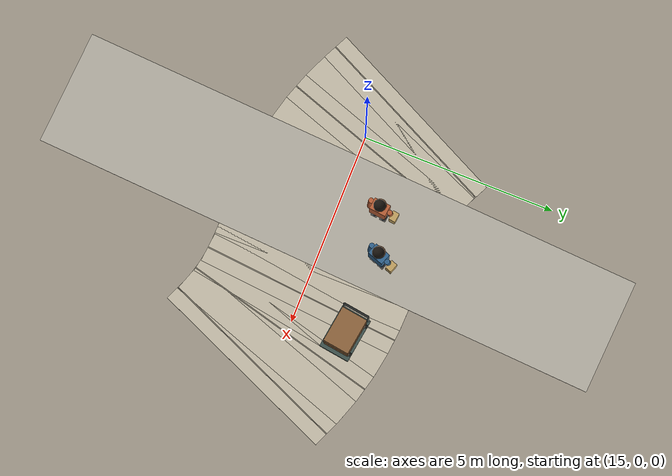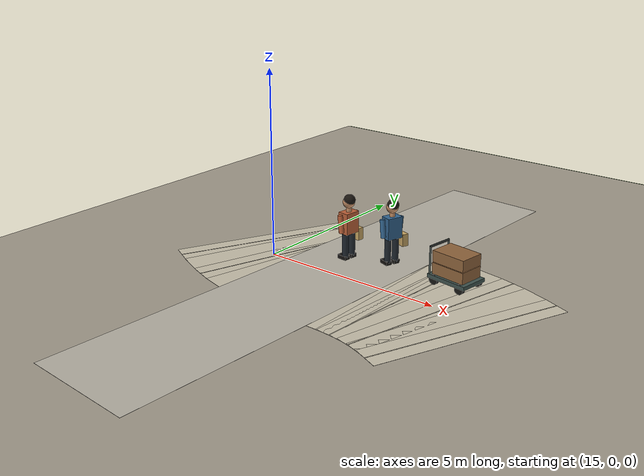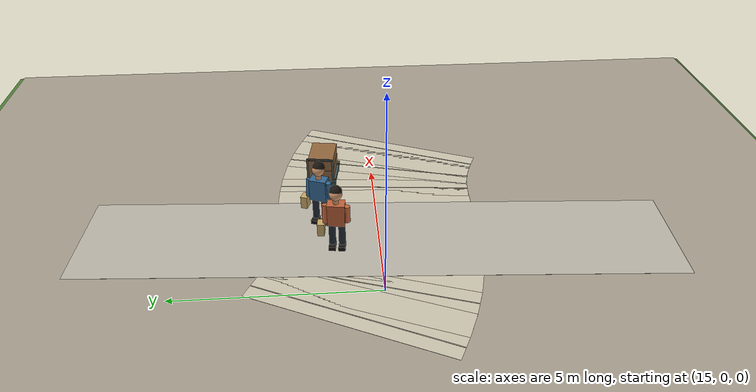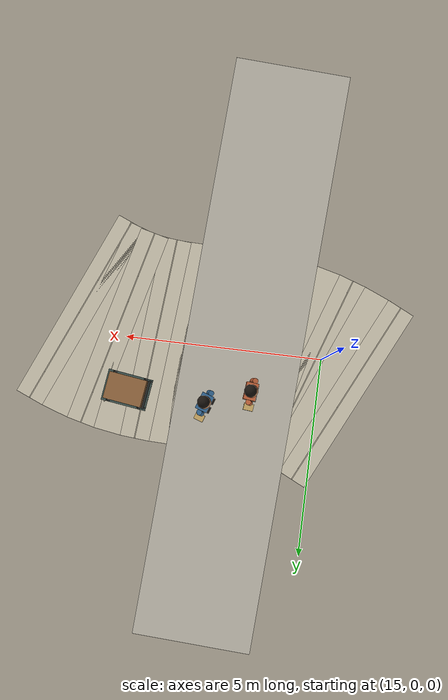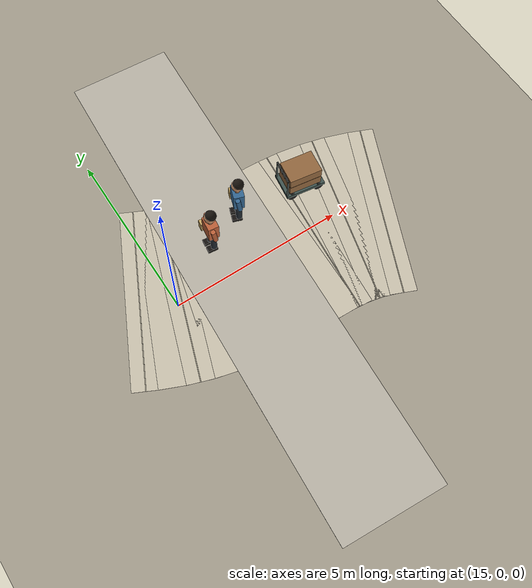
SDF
<sdf version="1.10">
 <world name="swan_town">
  <model name="ground_plane">
   <pose>-14 30 -0.025 0 0 0</pose>
   <static>true</static>
   <link name="link">
    <collision name="collision">
     <geometry><plane><normal>0 0 1</normal><size>100 100</size></plane></geometry>
    </collision>
    <visual name="visual">
     <geometry><plane><normal>0 0 1</normal><size>100 100</size></plane></geometry>
     <material><ambient>0.3 0.5 0.2 1</ambient><diffuse>0.3 0.5 0.2 1</diffuse></material>
    </visual>
   </link>
  </model>
  <model name="ground">
   <static>true</static>
   <pose>15 0 -0.1 0 0 0</pose>
   <link name="body">
    <collision name="box_collision"><geometry><box><size>46 24 0.2</size></box></geometry></collision>
    <visual name="box_visual">
     <geometry><box><size>46 24 0.2</size></box></geometry>
     <material><ambient>0.64 0.61 0.55 1</ambient><diffuse>0.64 0.61 0.55 1</diffuse></material>
    </visual>
   </link>
  </model>
  <model name="market_paving_32">
   <static>true</static>
   <pose>14.25 0.77782 0.002 0 0 -0.45458</pose>
   <link name="body">
    <visual name="box_visual">
     <geometry><box><size>0.75 5.2 0.004</size></box></geometry>
     <material><ambient>0.79 0.76 0.68 1</ambient><diffuse>0.79 0.76 0.68 1</diffuse></material>
    </visual>
   </link>
  </model>
  <model name="paving_joint_32">
   <static>true</static>
   <pose>14.25 0.77782 0.0045 0 0 -0.45458</pose>
   <link name="body">
    <visual name="box_visual">
     <geometry><box><size>0.025 5.2 0.001</size></box></geometry>
     <material><ambient>0.67 0.64 0.57 1</ambient><diffuse>0.67 0.64 0.57 1</diffuse></material>
    </visual>
   </link>
  </model>
  <model name="market_paving_33">
   <static>true</static>
   <pose>14.75 0.54833 0.002 0 0 -0.40225</pose>
   <link name="body">
    <visual name="box_visual">
     <geometry><box><size>0.75 5.2 0.004</size></box></geometry>
     <material><ambient>0.79 0.76 0.68 1</ambient><diffuse>0.79 0.76 0.68 1</diffuse></material>
    </visual>
   </link>
  </model>
  <model name="market_paving_34">
   <static>true</static>
   <pose>15.25 0.35543 0.002 0 0 -0.33122</pose>
   <link name="body">
    <visual name="box_visual">
     <geometry><box><size>0.75 5.2 0.004</size></box></geometry>
     <material><ambient>0.79 0.76 0.68 1</ambient><diffuse>0.79 0.76 0.68 1</diffuse></material>
    </visual>
   </link>
  </model>
  <model name="paving_joint_34">
   <static>true</static>
   <pose>15.25 0.35543 0.0045 0 0 -0.33122</pose>
   <link name="body">
    <visual name="box_visual">
     <geometry><box><size>0.025 5.2 0.001</size></box></geometry>
     <material><ambient>0.67 0.64 0.57 1</ambient><diffuse>0.67 0.64 0.57 1</diffuse></material>
    </visual>
   </link>
  </model>
  <model name="market_paving_35">
   <static>true</static>
   <pose>15.75 0.20586 0.002 0 0 -0.2486</pose>
   <link name="body">
    <visual name="box_visual">
     <geometry><box><size>0.75 5.2 0.004</size></box></geometry>
     <material><ambient>0.79 0.76 0.68 1</ambient><diffuse>0.79 0.76 0.68 1</diffuse></material>
    </visual>
   </link>
  </model>
  <model name="market_paving_36">
   <static>true</static>
   <pose>16.25 0.10125 0.002 0 0 -0.16424</pose>
   <link name="body">
    <visual name="box_visual">
     <geometry><box><size>0.75 5.2 0.004</size></box></geometry>
     <material><ambient>0.79 0.76 0.68 1</ambient><diffuse>0.79 0.76 0.68 1</diffuse></material>
    </visual>
   </link>
  </model>
  <model name="paving_joint_36">
   <static>true</static>
   <pose>16.25 0.10125 0.0045 0 0 -0.16424</pose>
   <link name="body">
    <visual name="box_visual">
     <geometry><box><size>0.025 5.2 0.001</size></box></geometry>
     <material><ambient>0.67 0.64 0.57 1</ambient><diffuse>0.67 0.64 0.57 1</diffuse></material>
    </visual>
   </link>
  </model>
  <model name="market_paving_37">
   <static>true</static>
   <pose>16.75 0.038143 0.002 0 0 -0.089204</pose>
   <link name="body">
    <visual name="box_visual">
     <geometry><box><size>0.75 5.2 0.004</size></box></geometry>
     <material><ambient>0.79 0.76 0.68 1</ambient><diffuse>0.79 0.76 0.68 1</diffuse></material>
    </visual>
   </link>
  </model>
  <model name="market_paving_38">
   <static>true</static>
   <pose>17.25 0.0084221 0.002 0 0 -0.033398</pose>
   <link name="body">
    <visual name="box_visual">
     <geometry><box><size>0.75 5.2 0.004</size></box></geometry>
     <material><ambient>0.79 0.76 0.68 1</ambient><diffuse>0.79 0.76 0.68 1</diffuse></material>
    </visual>
   </link>
  </model>
  <model name="paving_joint_38">
   <static>true</static>
   <pose>17.25 0.0084221 0.0045 0 0 -0.033398</pose>
   <link name="body">
    <visual name="box_visual">
     <geometry><box><size>0.025 5.2 0.001</size></box></geometry>
     <material><ambient>0.67 0.64 0.57 1</ambient><diffuse>0.67 0.64 0.57 1</diffuse></material>
    </visual>
   </link>
  </model>
  <model name="market_paving_39">
   <static>true</static>
   <pose>17.75 0.00031537 0.002 0 0 -0.003781</pose>
   <link name="body">
    <visual name="box_visual">
     <geometry><box><size>0.75 5.2 0.004</size></box></geometry>
     <material><ambient>0.79 0.76 0.68 1</ambient><diffuse>0.79 0.76 0.68 1</diffuse></material>
    </visual>
   </link>
  </model>
  <model name="market_paving_40">
   <static>true</static>
   <pose>18.25 -0.00031537 0.002 0 0 -0.003781</pose>
   <link name="body">
    <visual name="box_visual">
     <geometry><box><size>0.75 5.2 0.004</size></box></geometry>
     <material><ambient>0.79 0.76 0.68 1</ambient><diffuse>0.79 0.76 0.68 1</diffuse></material>
    </visual>
   </link>
  </model>
  <model name="paving_joint_40">
   <static>true</static>
   <pose>18.25 -0.00031537 0.0045 0 0 -0.003781</pose>
   <link name="body">
    <visual name="box_visual">
     <geometry><box><size>0.025 5.2 0.001</size></box></geometry>
     <material><ambient>0.67 0.64 0.57 1</ambient><diffuse>0.67 0.64 0.57 1</diffuse></material>
    </visual>
   </link>
  </model>
  <model name="market_paving_41">
   <static>true</static>
   <pose>18.75 -0.0084221 0.002 0 0 -0.033398</pose>
   <link name="body">
    <visual name="box_visual">
     <geometry><box><size>0.75 5.2 0.004</size></box></geometry>
     <material><ambient>0.79 0.76 0.68 1</ambient><diffuse>0.79 0.76 0.68 1</diffuse></material>
    </visual>
   </link>
  </model>
  <model name="market_paving_42">
   <static>true</static>
   <pose>19.25 -0.038143 0.002 0 0 -0.089204</pose>
   <link name="body">
    <visual name="box_visual">
     <geometry><box><size>0.75 5.2 0.004</size></box></geometry>
     <material><ambient>0.79 0.76 0.68 1</ambient><diffuse>0.79 0.76 0.68 1</diffuse></material>
    </visual>
   </link>
  </model>
  <model name="paving_joint_42">
   <static>true</static>
   <pose>19.25 -0.038143 0.0045 0 0 -0.089204</pose>
   <link name="body">
    <visual name="box_visual">
     <geometry><box><size>0.025 5.2 0.001</size></box></geometry>
     <material><ambient>0.67 0.64 0.57 1</ambient><diffuse>0.67 0.64 0.57 1</diffuse></material>
    </visual>
   </link>
  </model>
  <model name="market_paving_43">
   <static>true</static>
   <pose>19.75 -0.10125 0.002 0 0 -0.16424</pose>
   <link name="body">
    <visual name="box_visual">
     <geometry><box><size>0.75 5.2 0.004</size></box></geometry>
     <material><ambient>0.79 0.76 0.68 1</ambient><diffuse>0.79 0.76 0.68 1</diffuse></material>
    </visual>
   </link>
  </model>
  <model name="market_paving_44">
   <static>true</static>
   <pose>20.25 -0.20586 0.002 0 0 -0.2486</pose>
   <link name="body">
    <visual name="box_visual">
     <geometry><box><size>0.75 5.2 0.004</size></box></geometry>
     <material><ambient>0.79 0.76 0.68 1</ambient><diffuse>0.79 0.76 0.68 1</diffuse></material>
    </visual>
   </link>
  </model>
  <model name="paving_joint_44">
   <static>true</static>
   <pose>20.25 -0.20586 0.0045 0 0 -0.2486</pose>
   <link name="body">
    <visual name="box_visual">
     <geometry><box><size>0.025 5.2 0.001</size></box></geometry>
     <material><ambient>0.67 0.64 0.57 1</ambient><diffuse>0.67 0.64 0.57 1</diffuse></material>
    </visual>
   </link>
  </model>
  <model name="market_paving_45">
   <static>true</static>
   <pose>20.75 -0.35543 0.002 0 0 -0.33122</pose>
   <link name="body">
    <visual name="box_visual">
     <geometry><box><size>0.75 5.2 0.004</size></box></geometry>
     <material><ambient>0.79 0.76 0.68 1</ambient><diffuse>0.79 0.76 0.68 1</diffuse></material>
    </visual>
   </link>
  </model>
  <model name="market_paving_46">
   <static>true</static>
   <pose>21.25 -0.54833 0.002 0 0 -0.40225</pose>
   <link name="body">
    <visual name="box_visual">
     <geometry><box><size>0.75 5.2 0.004</size></box></geometry>
     <material><ambient>0.79 0.76 0.68 1</ambient><diffuse>0.79 0.76 0.68 1</diffuse></material>
    </visual>
   </link>
  </model>
  <model name="paving_joint_46">
   <static>true</static>
   <pose>21.25 -0.54833 0.0045 0 0 -0.40225</pose>
   <link name="body">
    <visual name="box_visual">
     <geometry><box><size>0.025 5.2 0.001</size></box></geometry>
     <material><ambient>0.67 0.64 0.57 1</ambient><diffuse>0.67 0.64 0.57 1</diffuse></material>
    </visual>
   </link>
  </model>
  <model name="cross_aisle">
   <static>true</static>
   <pose>17 0.019772 0.006 0 0 -0.058381</pose>
   <link name="body">
    <visual name="box_visual">
     <geometry><box><size>3 15 0.002</size></box></geometry>
     <material><ambient>0.72 0.7 0.65 1</ambient><diffuse>0.72 0.7 0.65 1</diffuse></material>
    </visual>
   </link>
  </model>
  <model name="shopper_crossing">
   <static>true</static>
   <pose>16.71 1.0471 0 0 0 3.0315</pose>
   <link name="body">
    <collision name="leg_-1_collision">
     <pose>0 -0.12 0.4 0 0 0</pose>
     <geometry><cylinder><radius>0.085</radius><length>0.68</length></cylinder></geometry>
    </collision>
    <visual name="leg_-1_visual">
     <pose>0 -0.12 0.4 0 0 0</pose>
     <geometry><cylinder><radius>0.085</radius><length>0.68</length></cylinder></geometry>
     <material><ambient>0.12 0.15 0.18 1</ambient><diffuse>0.12 0.15 0.18 1</diffuse></material>
    </visual>
    <collision name="shoe_-1_collision">
     <pose>0.06 -0.12 0.055 0 0 0</pose>
     <geometry><box><size>0.28 0.17 0.11</size></box></geometry>
    </collision>
    <visual name="shoe_-1_visual">
     <pose>0.06 -0.12 0.055 0 0 0</pose>
     <geometry><box><size>0.28 0.17 0.11</size></box></geometry>
     <material><ambient>0.08 0.07 0.06 1</ambient><diffuse>0.08 0.07 0.06 1</diffuse></material>
    </visual>
    <collision name="arm_-1_collision">
     <pose>0.02 -0.27 1.02 0 -0.12 0</pose>
     <geometry><cylinder><radius>0.068</radius><length>0.48</length></cylinder></geometry>
    </collision>
    <visual name="arm_-1_visual">
     <pose>0.02 -0.27 1.02 0 -0.12 0</pose>
     <geometry><cylinder><radius>0.068</radius><length>0.48</length></cylinder></geometry>
     <material><ambient>0.74 0.38 0.22 1</ambient><diffuse>0.74 0.38 0.22 1</diffuse></material>
    </visual>
    <collision name="leg_1_collision">
     <pose>0 0.12 0.4 0 0 0</pose>
     <geometry><cylinder><radius>0.085</radius><length>0.68</length></cylinder></geometry>
    </collision>
    <visual name="leg_1_visual">
     <pose>0 0.12 0.4 0 0 0</pose>
     <geometry><cylinder><radius>0.085</radius><length>0.68</length></cylinder></geometry>
     <material><ambient>0.12 0.15 0.18 1</ambient><diffuse>0.12 0.15 0.18 1</diffuse></material>
    </visual>
    <collision name="shoe_1_collision">
     <pose>0.06 0.12 0.055 0 0 0</pose>
     <geometry><box><size>0.28 0.17 0.11</size></box></geometry>
    </collision>
    <visual name="shoe_1_visual">
     <pose>0.06 0.12 0.055 0 0 0</pose>
     <geometry><box><size>0.28 0.17 0.11</size></box></geometry>
     <material><ambient>0.08 0.07 0.06 1</ambient><diffuse>0.08 0.07 0.06 1</diffuse></material>
    </visual>
    <collision name="arm_1_collision">
     <pose>0.02 0.27 1.02 0 0.12 0</pose>
     <geometry><cylinder><radius>0.068</radius><length>0.48</length></cylinder></geometry>
    </collision>
    <visual name="arm_1_visual">
     <pose>0.02 0.27 1.02 0 0.12 0</pose>
     <geometry><cylinder><radius>0.068</radius><length>0.48</length></cylinder></geometry>
     <material><ambient>0.74 0.38 0.22 1</ambient><diffuse>0.74 0.38 0.22 1</diffuse></material>
    </visual>
    <collision name="torso_collision">
     <pose>0 0 1.02 0 0 0</pose>
     <geometry><box><size>0.3 0.43 0.58</size></box></geometry>
    </collision>
    <visual name="torso_visual">
     <pose>0 0 1.02 0 0 0</pose>
     <geometry><box><size>0.3 0.43 0.58</size></box></geometry>
     <material><ambient>0.74 0.38 0.22 1</ambient><diffuse>0.74 0.38 0.22 1</diffuse></material>
    </visual>
    <visual name="neck_visual">
     <pose>0 0 1.37 0 0 0</pose>
     <geometry><cylinder><radius>0.07</radius><length>0.13</length></cylinder></geometry>
     <material><ambient>0.77 0.56 0.4 1</ambient><diffuse>0.77 0.56 0.4 1</diffuse></material>
    </visual>
    <collision name="head_collision">
     <pose>0 0 1.57 0 0 0</pose>
     <geometry><sphere><radius>0.16</radius></sphere></geometry>
    </collision>
    <visual name="head_visual">
     <pose>0 0 1.57 0 0 0</pose>
     <geometry><sphere><radius>0.16</radius></sphere></geometry>
     <material><ambient>0.77 0.56 0.4 1</ambient><diffuse>0.77 0.56 0.4 1</diffuse></material>
    </visual>
    <visual name="hair_visual">
     <pose>-0.025 0 1.63 0 0 0</pose>
     <geometry><sphere><radius>0.155</radius></sphere></geometry>
     <material><ambient>0.1 0.08 0.06 1</ambient><diffuse>0.1 0.08 0.06 1</diffuse></material>
    </visual>
    <collision name="shopping_bag_collision">
     <pose>0.04 -0.38 0.6 0 0 0</pose>
     <geometry><box><size>0.24 0.17 0.33</size></box></geometry>
    </collision>
    <visual name="shopping_bag_visual">
     <pose>0.04 -0.38 0.6 0 0 0</pose>
     <geometry><box><size>0.24 0.17 0.33</size></box></geometry>
     <material><ambient>0.78 0.65 0.39 1</ambient><diffuse>0.78 0.65 0.39 1</diffuse></material>
    </visual>
   </link>
  </model>
  <model name="handcart_unloading">
   <static>true</static>
   <pose>19.803 1.3575 0 0 0 -0.14026</pose>
   <link name="body">
    <collision name="bed_collision">
     <pose>0 0 0.2 0 0 0</pose>
     <geometry><box><size>1.15 0.8 0.1</size></box></geometry>
    </collision>
    <visual name="bed_visual">
     <pose>0 0 0.2 0 0 0</pose>
     <geometry><box><size>1.15 0.8 0.1</size></box></geometry>
     <material><ambient>0.25 0.33 0.31 1</ambient><diffuse>0.25 0.33 0.31 1</diffuse></material>
    </visual>
    <collision name="wheel_-0.4_-0.34_collision">
     <pose>-0.4 -0.34 0.13 1.5708 0 0</pose>
     <geometry><cylinder><radius>0.13</radius><length>0.1</length></cylinder></geometry>
    </collision>
    <visual name="wheel_-0.4_-0.34_visual">
     <pose>-0.4 -0.34 0.13 1.5708 0 0</pose>
     <geometry><cylinder><radius>0.13</radius><length>0.1</length></cylinder></geometry>
     <material><ambient>0.09 0.09 0.08 1</ambient><diffuse>0.09 0.09 0.08 1</diffuse></material>
    </visual>
    <collision name="wheel_-0.4_0.34_collision">
     <pose>-0.4 0.34 0.13 1.5708 0 0</pose>
     <geometry><cylinder><radius>0.13</radius><length>0.1</length></cylinder></geometry>
    </collision>
    <visual name="wheel_-0.4_0.34_visual">
     <pose>-0.4 0.34 0.13 1.5708 0 0</pose>
     <geometry><cylinder><radius>0.13</radius><length>0.1</length></cylinder></geometry>
     <material><ambient>0.09 0.09 0.08 1</ambient><diffuse>0.09 0.09 0.08 1</diffuse></material>
    </visual>
    <collision name="wheel_0.4_-0.34_collision">
     <pose>0.4 -0.34 0.13 1.5708 0 0</pose>
     <geometry><cylinder><radius>0.13</radius><length>0.1</length></cylinder></geometry>
    </collision>
    <visual name="wheel_0.4_-0.34_visual">
     <pose>0.4 -0.34 0.13 1.5708 0 0</pose>
     <geometry><cylinder><radius>0.13</radius><length>0.1</length></cylinder></geometry>
     <material><ambient>0.09 0.09 0.08 1</ambient><diffuse>0.09 0.09 0.08 1</diffuse></material>
    </visual>
    <collision name="wheel_0.4_0.34_collision">
     <pose>0.4 0.34 0.13 1.5708 0 0</pose>
     <geometry><cylinder><radius>0.13</radius><length>0.1</length></cylinder></geometry>
    </collision>
    <visual name="wheel_0.4_0.34_visual">
     <pose>0.4 0.34 0.13 1.5708 0 0</pose>
     <geometry><cylinder><radius>0.13</radius><length>0.1</length></cylinder></geometry>
     <material><ambient>0.09 0.09 0.08 1</ambient><diffuse>0.09 0.09 0.08 1</diffuse></material>
    </visual>
    <collision name="cargo_0.41_collision">
     <pose>0 0 0.41 0 0 0</pose>
     <geometry><box><size>0.95 0.68 0.3</size></box></geometry>
    </collision>
    <visual name="cargo_0.41_visual">
     <pose>0 0 0.41 0 0 0</pose>
     <geometry><box><size>0.95 0.68 0.3</size></box></geometry>
     <material><ambient>0.57 0.4 0.24 1</ambient><diffuse>0.57 0.4 0.24 1</diffuse></material>
    </visual>
    <collision name="cargo_0.73_collision">
     <pose>0 0 0.73 0 0 0</pose>
     <geometry><box><size>0.95 0.68 0.3</size></box></geometry>
    </collision>
    <visual name="cargo_0.73_visual">
     <pose>0 0 0.73 0 0 0</pose>
     <geometry><box><size>0.95 0.68 0.3</size></box></geometry>
     <material><ambient>0.57 0.4 0.24 1</ambient><diffuse>0.57 0.4 0.24 1</diffuse></material>
    </visual>
    <collision name="handle_-0.34_collision">
     <pose>-0.55 -0.34 0.58 0 0 0</pose>
     <geometry><cylinder><radius>0.025</radius><length>0.75</length></cylinder></geometry>
    </collision>
    <visual name="handle_-0.34_visual">
     <pose>-0.55 -0.34 0.58 0 0 0</pose>
     <geometry><cylinder><radius>0.025</radius><length>0.75</length></cylinder></geometry>
     <material><ambient>0.3 0.34 0.32 1</ambient><diffuse>0.3 0.34 0.32 1</diffuse></material>
    </visual>
    <collision name="handle_0.34_collision">
     <pose>-0.55 0.34 0.58 0 0 0</pose>
     <geometry><cylinder><radius>0.025</radius><length>0.75</length></cylinder></geometry>
    </collision>
    <visual name="handle_0.34_visual">
     <pose>-0.55 0.34 0.58 0 0 0</pose>
     <geometry><cylinder><radius>0.025</radius><length>0.75</length></cylinder></geometry>
     <material><ambient>0.3 0.34 0.32 1</ambient><diffuse>0.3 0.34 0.32 1</diffuse></material>
    </visual>
    <collision name="grip_collision">
     <pose>-0.55 0 0.95 1.5708 0 0</pose>
     <geometry><cylinder><radius>0.03</radius><length>0.7</length></cylinder></geometry>
    </collision>
    <visual name="grip_visual">
     <pose>-0.55 0 0.95 1.5708 0 0</pose>
     <geometry><cylinder><radius>0.03</radius><length>0.7</length></cylinder></geometry>
     <material><ambient>0.15 0.16 0.15 1</ambient><diffuse>0.15 0.16 0.15 1</diffuse></material>
    </visual>
   </link>
  </model>
  <model name="crowd_06">
   <static>true</static>
   <pose>17.804 1.4502 0 0 0 2.7976</pose>
   <link name="body">
    <collision name="leg_-1_collision">
     <pose>0 -0.12 0.4 0 0 0</pose>
     <geometry><cylinder><radius>0.085</radius><length>0.68</length></cylinder></geometry>
    </collision>
    <visual name="leg_-1_visual">
     <pose>0 -0.12 0.4 0 0 0</pose>
     <geometry><cylinder><radius>0.085</radius><length>0.68</length></cylinder></geometry>
     <material><ambient>0.12 0.15 0.18 1</ambient><diffuse>0.12 0.15 0.18 1</diffuse></material>
    </visual>
    <collision name="shoe_-1_collision">
     <pose>0.06 -0.12 0.055 0 0 0</pose>
     <geometry><box><size>0.28 0.17 0.11</size></box></geometry>
    </collision>
    <visual name="shoe_-1_visual">
     <pose>0.06 -0.12 0.055 0 0 0</pose>
     <geometry><box><size>0.28 0.17 0.11</size></box></geometry>
     <material><ambient>0.08 0.07 0.06 1</ambient><diffuse>0.08 0.07 0.06 1</diffuse></material>
    </visual>
    <collision name="arm_-1_collision">
     <pose>0.02 -0.27 1.02 0 -0.12 0</pose>
     <geometry><cylinder><radius>0.068</radius><length>0.48</length></cylinder></geometry>
    </collision>
    <visual name="arm_-1_visual">
     <pose>0.02 -0.27 1.02 0 -0.12 0</pose>
     <geometry><cylinder><radius>0.068</radius><length>0.48</length></cylinder></geometry>
     <material><ambient>0.2 0.4 0.57 1</ambient><diffuse>0.2 0.4 0.57 1</diffuse></material>
    </visual>
    <collision name="leg_1_collision">
     <pose>0 0.12 0.4 0 0 0</pose>
     <geometry><cylinder><radius>0.085</radius><length>0.68</length></cylinder></geometry>
    </collision>
    <visual name="leg_1_visual">
     <pose>0 0.12 0.4 0 0 0</pose>
     <geometry><cylinder><radius>0.085</radius><length>0.68</length></cylinder></geometry>
     <material><ambient>0.12 0.15 0.18 1</ambient><diffuse>0.12 0.15 0.18 1</diffuse></material>
    </visual>
    <collision name="shoe_1_collision">
     <pose>0.06 0.12 0.055 0 0 0</pose>
     <geometry><box><size>0.28 0.17 0.11</size></box></geometry>
    </collision>
    <visual name="shoe_1_visual">
     <pose>0.06 0.12 0.055 0 0 0</pose>
     <geometry><box><size>0.28 0.17 0.11</size></box></geometry>
     <material><ambient>0.08 0.07 0.06 1</ambient><diffuse>0.08 0.07 0.06 1</diffuse></material>
    </visual>
    <collision name="arm_1_collision">
     <pose>0.02 0.27 1.02 0 0.12 0</pose>
     <geometry><cylinder><radius>0.068</radius><length>0.48</length></cylinder></geometry>
    </collision>
    <visual name="arm_1_visual">
     <pose>0.02 0.27 1.02 0 0.12 0</pose>
     <geometry><cylinder><radius>0.068</radius><length>0.48</length></cylinder></geometry>
     <material><ambient>0.2 0.4 0.57 1</ambient><diffuse>0.2 0.4 0.57 1</diffuse></material>
    </visual>
    <collision name="torso_collision">
     <pose>0 0 1.02 0 0 0</pose>
     <geometry><box><size>0.3 0.43 0.58</size></box></geometry>
    </collision>
    <visual name="torso_visual">
     <pose>0 0 1.02 0 0 0</pose>
     <geometry><box><size>0.3 0.43 0.58</size></box></geometry>
     <material><ambient>0.2 0.4 0.57 1</ambient><diffuse>0.2 0.4 0.57 1</diffuse></material>
    </visual>
    <visual name="neck_visual">
     <pose>0 0 1.37 0 0 0</pose>
     <geometry><cylinder><radius>0.07</radius><length>0.13</length></cylinder></geometry>
     <material><ambient>0.77 0.56 0.4 1</ambient><diffuse>0.77 0.56 0.4 1</diffuse></material>
    </visual>
    <collision name="head_collision">
     <pose>0 0 1.57 0 0 0</pose>
     <geometry><sphere><radius>0.16</radius></sphere></geometry>
    </collision>
    <visual name="head_visual">
     <pose>0 0 1.57 0 0 0</pose>
     <geometry><sphere><radius>0.16</radius></sphere></geometry>
     <material><ambient>0.77 0.56 0.4 1</ambient><diffuse>0.77 0.56 0.4 1</diffuse></material>
    </visual>
    <visual name="hair_visual">
     <pose>-0.025 0 1.63 0 0 0</pose>
     <geometry><sphere><radius>0.155</radius></sphere></geometry>
     <material><ambient>0.1 0.08 0.06 1</ambient><diffuse>0.1 0.08 0.06 1</diffuse></material>
    </visual>
    <collision name="shopping_bag_collision">
     <pose>0.04 -0.38 0.6 0 0 0</pose>
     <geometry><box><size>0.24 0.17 0.33</size></box></geometry>
    </collision>
    <visual name="shopping_bag_visual">
     <pose>0.04 -0.38 0.6 0 0 0</pose>
     <geometry><box><size>0.24 0.17 0.33</size></box></geometry>
     <material><ambient>0.78 0.65 0.39 1</ambient><diffuse>0.78 0.65 0.39 1</diffuse></material>
    </visual>
   </link>
  </model>
 </world>
</sdf>
